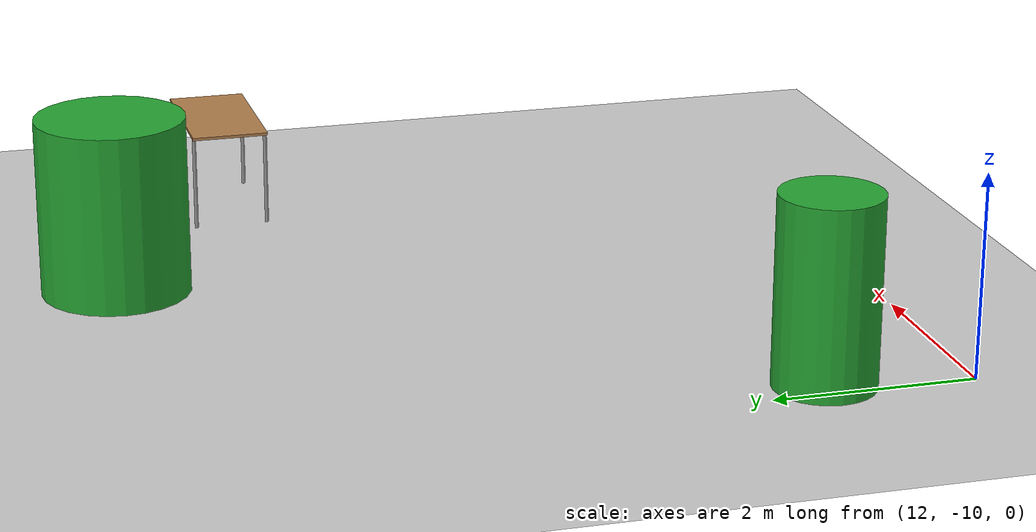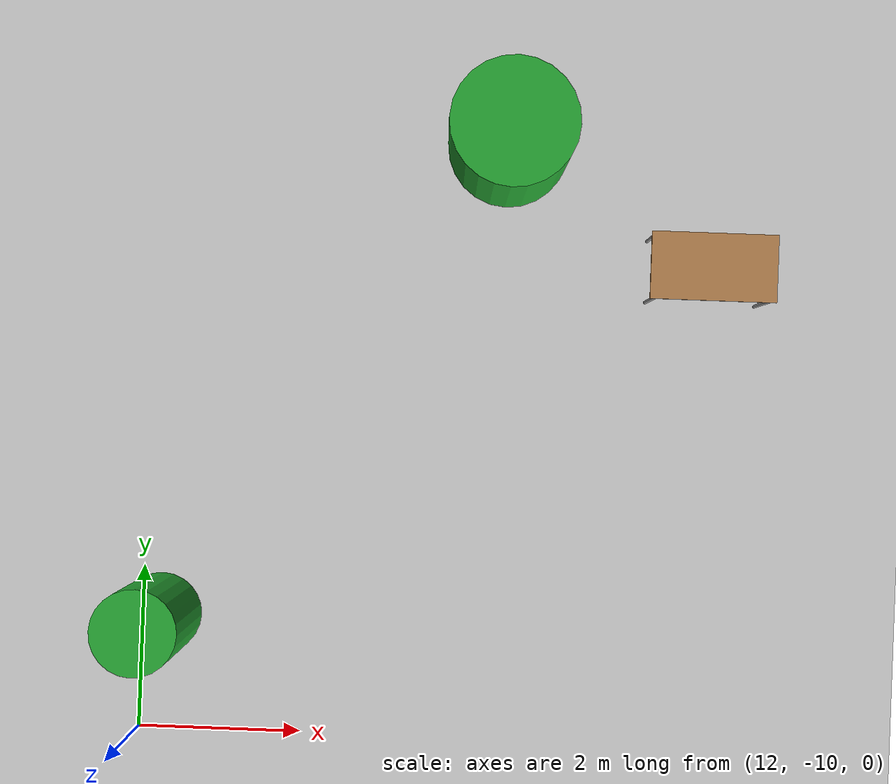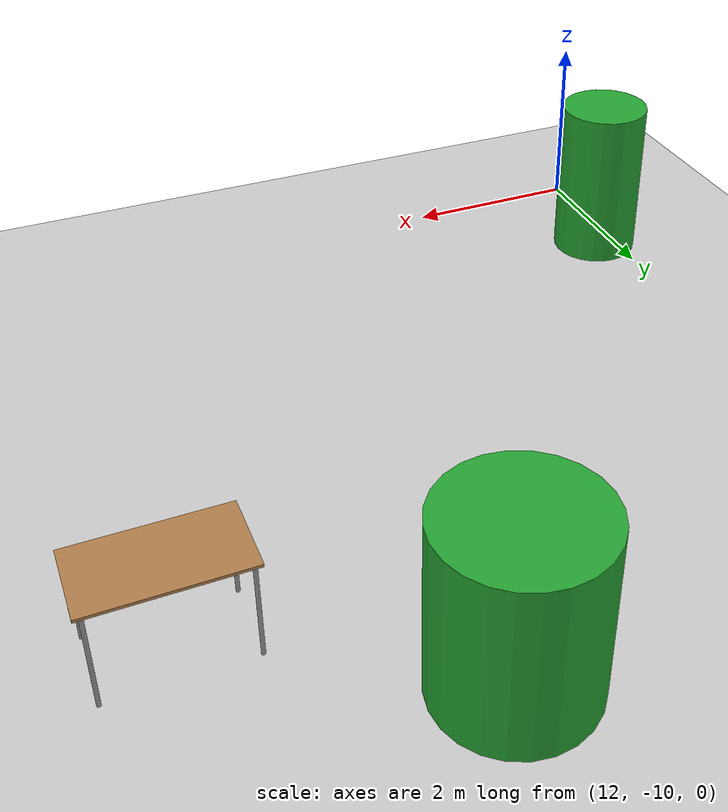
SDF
<sdf version="1.6">
 <world name="default">
  <model name="ground_plane">
   <static>1</static>
   <link name="link">
    <collision name="collision">
     <geometry><plane><normal>0 0 1</normal><size>100 100</size></plane></geometry>
     <surface><friction><ode><mu>100</mu><mu2>50</mu2></ode></friction></surface>
    </collision>
    <visual name="visual">
     <cast_shadows>0</cast_shadows>
     <geometry><plane><normal>0 0 1</normal><size>100 100</size></plane></geometry>
     <material>
      <script><uri>file://media/materials/scripts/gazebo.material</uri><name>Gazebo/Grey</name></script>
     </material>
    </visual>
   </link>
  </model>
  <model name="unit_cylinder_0">
   <link name="link">
    <inertial>
     <mass>1</mass>
     <inertia><ixx>0.145833</ixx><ixy>0</ixy><ixz>0</ixz><iyy>0.145833</iyy><iyz>0</iyz><izz>0.125</izz></inertia>
    </inertial>
    <visual name="visual">
     <geometry><cylinder><radius>0.5</radius><length>1.86672</length></cylinder></geometry>
     <material>
      <script><name>Gazebo/Green</name><uri>file://media/materials/scripts/gazebo.material</uri></script>
      <shader type="vertex"><normal_map>__default__</normal_map></shader>
      <ambient>0 1 0 1</ambient>
      <diffuse>0 1 0 1</diffuse>
      <specular>0.1 0.1 0.1 1</specular>
      <emissive>0 0 0 1</emissive>
     </material>
    </visual>
    <collision name="collision">
     <geometry><cylinder><radius>0.5</radius><length>1.86672</length></cylinder></geometry>
     <surface>
      <friction>
       <ode><mu>1</mu><mu2>1</mu2><fdir1>0 0 0</fdir1><slip1>0</slip1><slip2>0</slip2></ode>
       <torsional>
        <coefficient>1</coefficient>
        <patch_radius>0</patch_radius>
        <surface_radius>0</surface_radius>
        <use_patch_radius>1</use_patch_radius>
        <ode><slip>0</slip></ode>
       </torsional>
      </friction>
      <bounce><restitution_coefficient>0</restitution_coefficient><threshold>1e+06</threshold></bounce>
      <contact>
       <collide_without_contact>0</collide_without_contact>
       <collide_without_contact_bitmask>1</collide_without_contact_bitmask>
       <collide_bitmask>1</collide_bitmask>
       <ode>
        <soft_cfm>0</soft_cfm>
        <soft_erp>0.2</soft_erp>
        <kp>1e+13</kp>
        <kd>1</kd>
        <max_vel>0.01</max_vel>
        <min_depth>0</min_depth>
       </ode>
       <bullet>
        <split_impulse>1</split_impulse>
        <split_impulse_penetration_threshold>-0.01</split_impulse_penetration_threshold>
        <soft_cfm>0</soft_cfm>
        <soft_erp>0.2</soft_erp>
        <kp>1e+13</kp>
        <kd>1</kd>
       </bullet>
      </contact>
     </surface>
    </collision>
   </link>
   <link name="link_clone">
    <inertial>
     <mass>1</mass>
     <inertia><ixx>0.145833</ixx><ixy>0</ixy><ixz>0</ixz><iyy>0.145833</iyy><iyz>0</iyz><izz>0.125</izz></inertia>
    </inertial>
    <pose>3.95372 6.03948 0 0 -0 -1e-06</pose>
    <visual name="visual">
     <geometry><cylinder><radius>0.75</radius><length>1.8</length></cylinder></geometry>
     <material>
      <script><name>Gazebo/Green</name><uri>file://media/materials/scripts/gazebo.material</uri></script>
      <shader type="vertex"><normal_map>__default__</normal_map></shader>
      <ambient>0 1 0 1</ambient>
      <diffuse>0 1 0 1</diffuse>
      <specular>0.1 0.1 0.1 1</specular>
      <emissive>0 0 0 1</emissive>
     </material>
    </visual>
    <collision name="collision">
     <geometry><cylinder><radius>0.75</radius><length>1.8</length></cylinder></geometry>
     <surface>
      <friction>
       <ode><mu>1</mu><mu2>1</mu2><fdir1>0 0 0</fdir1><slip1>0</slip1><slip2>0</slip2></ode>
       <torsional>
        <coefficient>1</coefficient>
        <patch_radius>0</patch_radius>
        <surface_radius>0</surface_radius>
        <use_patch_radius>1</use_patch_radius>
        <ode><slip>0</slip></ode>
       </torsional>
      </friction>
      <bounce><restitution_coefficient>0</restitution_coefficient><threshold>1e+06</threshold></bounce>
      <contact>
       <collide_without_contact>0</collide_without_contact>
       <collide_without_contact_bitmask>1</collide_without_contact_bitmask>
       <collide_bitmask>1</collide_bitmask>
       <ode>
        <soft_cfm>0</soft_cfm>
        <soft_erp>0.2</soft_erp>
        <kp>1e+13</kp>
        <kd>1</kd>
        <max_vel>0.01</max_vel>
        <min_depth>0</min_depth>
       </ode>
       <bullet>
        <split_impulse>1</split_impulse>
        <split_impulse_penetration_threshold>-0.01</split_impulse_penetration_threshold>
        <soft_cfm>0</soft_cfm>
        <soft_erp>0.2</soft_erp>
        <kp>1e+13</kp>
        <kd>1</kd>
       </bullet>
      </contact>
     </surface>
    </collision>
   </link>
   <static>0</static>
   <pose>12.228 -8.58803 0.933352 0 0 -0.024433</pose>
  </model>
  <model name="table">
   <static>1</static>
   <link name="link">
    <collision name="surface">
     <pose>0 0 1 0 -0 0</pose>
     <geometry><box><size>1.5 0.8 0.03</size></box></geometry>
     <surface><friction><ode><mu>0.6</mu><mu2>0.6</mu2></ode></friction></surface>
    </collision>
    <visual name="visual1">
     <pose>0 0 1 0 -0 0</pose>
     <geometry><box><size>1.5 0.8 0.03</size></box></geometry>
     <material>
      <script><uri>file://media/materials/scripts/gazebo.material</uri><name>Gazebo/Wood</name></script>
     </material>
    </visual>
    <collision name="front_left_leg">
     <pose>0.68 0.38 0.5 0 -0 0</pose>
     <geometry><cylinder><radius>0.02</radius><length>1</length></cylinder></geometry>
    </collision>
    <visual name="front_left_leg">
     <pose>0.68 0.38 0.5 0 -0 0</pose>
     <geometry><cylinder><radius>0.02</radius><length>1</length></cylinder></geometry>
     <material>
      <script><uri>file://media/materials/scripts/gazebo.material</uri><name>Gazebo/Grey</name></script>
     </material>
    </visual>
    <collision name="front_right_leg">
     <pose>0.68 -0.38 0.5 0 -0 0</pose>
     <geometry><cylinder><radius>0.02</radius><length>1</length></cylinder></geometry>
    </collision>
    <visual name="front_right_leg">
     <pose>0.68 -0.38 0.5 0 -0 0</pose>
     <geometry><cylinder><radius>0.02</radius><length>1</length></cylinder></geometry>
     <material>
      <script><uri>file://media/materials/scripts/gazebo.material</uri><name>Gazebo/Grey</name></script>
     </material>
    </visual>
    <collision name="back_right_leg">
     <pose>-0.68 -0.38 0.5 0 -0 0</pose>
     <geometry><cylinder><radius>0.02</radius><length>1</length></cylinder></geometry>
    </collision>
    <visual name="back_right_leg">
     <pose>-0.68 -0.38 0.5 0 -0 0</pose>
     <geometry><cylinder><radius>0.02</radius><length>1</length></cylinder></geometry>
     <material>
      <script><uri>file://media/materials/scripts/gazebo.material</uri><name>Gazebo/Grey</name></script>
     </material>
    </visual>
    <collision name="back_left_leg">
     <pose>-0.68 0.38 0.5 0 -0 0</pose>
     <geometry><cylinder><radius>0.02</radius><length>1</length></cylinder></geometry>
    </collision>
    <visual name="back_left_leg">
     <pose>-0.68 0.38 0.5 0 -0 0</pose>
     <geometry><cylinder><radius>0.02</radius><length>1</length></cylinder></geometry>
     <material>
      <script><uri>file://media/materials/scripts/gazebo.material</uri><name>Gazebo/Grey</name></script>
     </material>
    </visual>
   </link>
   <pose>18.7719 -4.13265 0 0 -0 0</pose>
  </model>
 </world>
</sdf>
